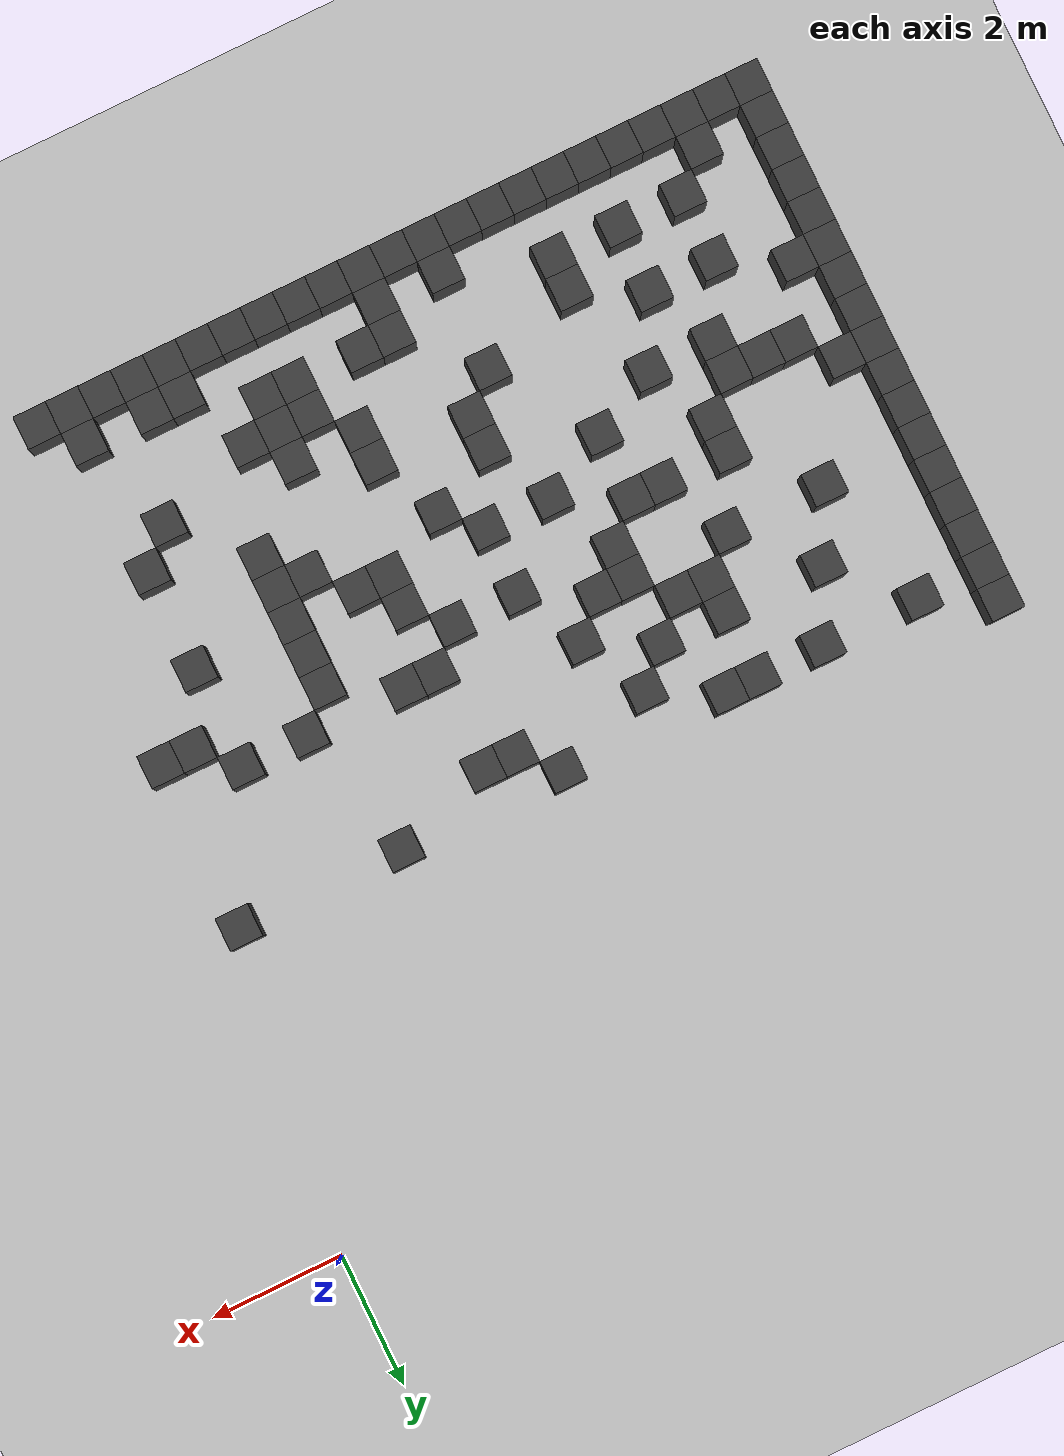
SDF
<sdf version="1.7">
 <world name="map_4752">
  <model name="ground_plane">
   <static>true</static>
   <link name="link">
    <collision name="collision">
     <geometry><plane><normal>0 0 1</normal><size>200 200</size></plane></geometry>
    </collision>
    <visual name="visual">
     <geometry><plane><normal>0 0 1</normal><size>200 200</size></plane></geometry>
     <material><ambient>0.8 0.8 0.8 1</ambient><diffuse>0.8 0.8 0.8 1</diffuse></material>
    </visual>
   </link>
  </model>
  <model name="maze_environment">
   <static>true</static>
   <link name="wall_462">
    <pose>-12.250 -4.250 0.500 0 0 0</pose>
    <collision name="col"><geometry><box><size>0.5 0.5 1.0</size></box></geometry></collision>
    <visual name="vis">
     <geometry><box><size>0.5 0.5 1.0</size></box></geometry>
     <material><ambient>0.15 0.15 0.15 1</ambient><diffuse>0.25 0.25 0.25 1</diffuse></material>
    </visual>
   </link>
   <link name="wall_475">
    <pose>-12.250 -4.750 0.500 0 0 0</pose>
    <collision name="col"><geometry><box><size>0.5 0.5 1.0</size></box></geometry></collision>
    <visual name="vis">
     <geometry><box><size>0.5 0.5 1.0</size></box></geometry>
     <material><ambient>0.15 0.15 0.15 1</ambient><diffuse>0.25 0.25 0.25 1</diffuse></material>
    </visual>
   </link>
   <link name="wall_476">
    <pose>-11.250 -4.750 0.500 0 0 0</pose>
    <collision name="col"><geometry><box><size>0.5 0.5 1.0</size></box></geometry></collision>
    <visual name="vis">
     <geometry><box><size>0.5 0.5 1.0</size></box></geometry>
     <material><ambient>0.15 0.15 0.15 1</ambient><diffuse>0.25 0.25 0.25 1</diffuse></material>
    </visual>
   </link>
   <link name="wall_477">
    <pose>-9.750 -4.750 0.500 0 0 0</pose>
    <collision name="col"><geometry><box><size>0.5 0.5 1.0</size></box></geometry></collision>
    <visual name="vis">
     <geometry><box><size>0.5 0.5 1.0</size></box></geometry>
     <material><ambient>0.15 0.15 0.15 1</ambient><diffuse>0.25 0.25 0.25 1</diffuse></material>
    </visual>
   </link>
   <link name="wall_478">
    <pose>-8.750 -4.750 0.500 0 0 0</pose>
    <collision name="col"><geometry><box><size>0.5 0.5 1.0</size></box></geometry></collision>
    <visual name="vis">
     <geometry><box><size>0.5 0.5 1.0</size></box></geometry>
     <material><ambient>0.15 0.15 0.15 1</ambient><diffuse>0.25 0.25 0.25 1</diffuse></material>
    </visual>
   </link>
   <link name="wall_479">
    <pose>-8.250 -4.750 0.500 0 0 0</pose>
    <collision name="col"><geometry><box><size>0.5 0.5 1.0</size></box></geometry></collision>
    <visual name="vis">
     <geometry><box><size>0.5 0.5 1.0</size></box></geometry>
     <material><ambient>0.15 0.15 0.15 1</ambient><diffuse>0.25 0.25 0.25 1</diffuse></material>
    </visual>
   </link>
   <link name="wall_480">
    <pose>-5.750 -4.750 0.500 0 0 0</pose>
    <collision name="col"><geometry><box><size>0.5 0.5 1.0</size></box></geometry></collision>
    <visual name="vis">
     <geometry><box><size>0.5 0.5 1.0</size></box></geometry>
     <material><ambient>0.15 0.15 0.15 1</ambient><diffuse>0.25 0.25 0.25 1</diffuse></material>
    </visual>
   </link>
   <link name="wall_481">
    <pose>-3.250 -4.750 0.500 0 0 0</pose>
    <collision name="col"><geometry><box><size>0.5 0.5 1.0</size></box></geometry></collision>
    <visual name="vis">
     <geometry><box><size>0.5 0.5 1.0</size></box></geometry>
     <material><ambient>0.15 0.15 0.15 1</ambient><diffuse>0.25 0.25 0.25 1</diffuse></material>
    </visual>
   </link>
   <link name="wall_482">
    <pose>-0.750 -4.750 0.500 0 0 0</pose>
    <collision name="col"><geometry><box><size>0.5 0.5 1.0</size></box></geometry></collision>
    <visual name="vis">
     <geometry><box><size>0.5 0.5 1.0</size></box></geometry>
     <material><ambient>0.15 0.15 0.15 1</ambient><diffuse>0.25 0.25 0.25 1</diffuse></material>
    </visual>
   </link>
   <link name="wall_488">
    <pose>-12.250 -5.250 0.500 0 0 0</pose>
    <collision name="col"><geometry><box><size>0.5 0.5 1.0</size></box></geometry></collision>
    <visual name="vis">
     <geometry><box><size>0.5 0.5 1.0</size></box></geometry>
     <material><ambient>0.15 0.15 0.15 1</ambient><diffuse>0.25 0.25 0.25 1</diffuse></material>
    </visual>
   </link>
   <link name="wall_489">
    <pose>-7.250 -5.250 0.500 0 0 0</pose>
    <collision name="col"><geometry><box><size>0.5 0.5 1.0</size></box></geometry></collision>
    <visual name="vis">
     <geometry><box><size>0.5 0.5 1.0</size></box></geometry>
     <material><ambient>0.15 0.15 0.15 1</ambient><diffuse>0.25 0.25 0.25 1</diffuse></material>
    </visual>
   </link>
   <link name="wall_490">
    <pose>-5.250 -5.250 0.500 0 0 0</pose>
    <collision name="col"><geometry><box><size>0.5 0.5 1.0</size></box></geometry></collision>
    <visual name="vis">
     <geometry><box><size>0.5 0.5 1.0</size></box></geometry>
     <material><ambient>0.15 0.15 0.15 1</ambient><diffuse>0.25 0.25 0.25 1</diffuse></material>
    </visual>
   </link>
   <link name="wall_491">
    <pose>-4.750 -5.250 0.500 0 0 0</pose>
    <collision name="col"><geometry><box><size>0.5 0.5 1.0</size></box></geometry></collision>
    <visual name="vis">
     <geometry><box><size>0.5 0.5 1.0</size></box></geometry>
     <material><ambient>0.15 0.15 0.15 1</ambient><diffuse>0.25 0.25 0.25 1</diffuse></material>
    </visual>
   </link>
   <link name="wall_499">
    <pose>-12.250 -5.750 0.500 0 0 0</pose>
    <collision name="col"><geometry><box><size>0.5 0.5 1.0</size></box></geometry></collision>
    <visual name="vis">
     <geometry><box><size>0.5 0.5 1.0</size></box></geometry>
     <material><ambient>0.15 0.15 0.15 1</ambient><diffuse>0.25 0.25 0.25 1</diffuse></material>
    </visual>
   </link>
   <link name="wall_500">
    <pose>-10.250 -5.750 0.500 0 0 0</pose>
    <collision name="col"><geometry><box><size>0.5 0.5 1.0</size></box></geometry></collision>
    <visual name="vis">
     <geometry><box><size>0.5 0.5 1.0</size></box></geometry>
     <material><ambient>0.15 0.15 0.15 1</ambient><diffuse>0.25 0.25 0.25 1</diffuse></material>
    </visual>
   </link>
   <link name="wall_501">
    <pose>-8.750 -5.750 0.500 0 0 0</pose>
    <collision name="col"><geometry><box><size>0.5 0.5 1.0</size></box></geometry></collision>
    <visual name="vis">
     <geometry><box><size>0.5 0.5 1.0</size></box></geometry>
     <material><ambient>0.15 0.15 0.15 1</ambient><diffuse>0.25 0.25 0.25 1</diffuse></material>
    </visual>
   </link>
   <link name="wall_502">
    <pose>-7.750 -5.750 0.500 0 0 0</pose>
    <collision name="col"><geometry><box><size>0.5 0.5 1.0</size></box></geometry></collision>
    <visual name="vis">
     <geometry><box><size>0.5 0.5 1.0</size></box></geometry>
     <material><ambient>0.15 0.15 0.15 1</ambient><diffuse>0.25 0.25 0.25 1</diffuse></material>
    </visual>
   </link>
   <link name="wall_511">
    <pose>-12.250 -6.250 0.500 0 0 0</pose>
    <collision name="col"><geometry><box><size>0.5 0.5 1.0</size></box></geometry></collision>
    <visual name="vis">
     <geometry><box><size>0.5 0.5 1.0</size></box></geometry>
     <material><ambient>0.15 0.15 0.15 1</ambient><diffuse>0.25 0.25 0.25 1</diffuse></material>
    </visual>
   </link>
   <link name="wall_512">
    <pose>-8.750 -6.250 0.500 0 0 0</pose>
    <collision name="col"><geometry><box><size>0.5 0.5 1.0</size></box></geometry></collision>
    <visual name="vis">
     <geometry><box><size>0.5 0.5 1.0</size></box></geometry>
     <material><ambient>0.15 0.15 0.15 1</ambient><diffuse>0.25 0.25 0.25 1</diffuse></material>
    </visual>
   </link>
   <link name="wall_513">
    <pose>-8.250 -6.250 0.500 0 0 0</pose>
    <collision name="col"><geometry><box><size>0.5 0.5 1.0</size></box></geometry></collision>
    <visual name="vis">
     <geometry><box><size>0.5 0.5 1.0</size></box></geometry>
     <material><ambient>0.15 0.15 0.15 1</ambient><diffuse>0.25 0.25 0.25 1</diffuse></material>
    </visual>
   </link>
   <link name="wall_514">
    <pose>-6.750 -6.250 0.500 0 0 0</pose>
    <collision name="col"><geometry><box><size>0.5 0.5 1.0</size></box></geometry></collision>
    <visual name="vis">
     <geometry><box><size>0.5 0.5 1.0</size></box></geometry>
     <material><ambient>0.15 0.15 0.15 1</ambient><diffuse>0.25 0.25 0.25 1</diffuse></material>
    </visual>
   </link>
   <link name="wall_520">
    <pose>-12.250 -6.750 0.500 0 0 0</pose>
    <collision name="col"><geometry><box><size>0.5 0.5 1.0</size></box></geometry></collision>
    <visual name="vis">
     <geometry><box><size>0.5 0.5 1.0</size></box></geometry>
     <material><ambient>0.15 0.15 0.15 1</ambient><diffuse>0.25 0.25 0.25 1</diffuse></material>
    </visual>
   </link>
   <link name="wall_521">
    <pose>-10.750 -6.750 0.500 0 0 0</pose>
    <collision name="col"><geometry><box><size>0.5 0.5 1.0</size></box></geometry></collision>
    <visual name="vis">
     <geometry><box><size>0.5 0.5 1.0</size></box></geometry>
     <material><ambient>0.15 0.15 0.15 1</ambient><diffuse>0.25 0.25 0.25 1</diffuse></material>
    </visual>
   </link>
   <link name="wall_522">
    <pose>-9.250 -6.750 0.500 0 0 0</pose>
    <collision name="col"><geometry><box><size>0.5 0.5 1.0</size></box></geometry></collision>
    <visual name="vis">
     <geometry><box><size>0.5 0.5 1.0</size></box></geometry>
     <material><ambient>0.15 0.15 0.15 1</ambient><diffuse>0.25 0.25 0.25 1</diffuse></material>
    </visual>
   </link>
   <link name="wall_523">
    <pose>-7.750 -6.750 0.500 0 0 0</pose>
    <collision name="col"><geometry><box><size>0.5 0.5 1.0</size></box></geometry></collision>
    <visual name="vis">
     <geometry><box><size>0.5 0.5 1.0</size></box></geometry>
     <material><ambient>0.15 0.15 0.15 1</ambient><diffuse>0.25 0.25 0.25 1</diffuse></material>
    </visual>
   </link>
   <link name="wall_524">
    <pose>-7.250 -6.750 0.500 0 0 0</pose>
    <collision name="col"><geometry><box><size>0.5 0.5 1.0</size></box></geometry></collision>
    <visual name="vis">
     <geometry><box><size>0.5 0.5 1.0</size></box></geometry>
     <material><ambient>0.15 0.15 0.15 1</ambient><diffuse>0.25 0.25 0.25 1</diffuse></material>
    </visual>
   </link>
   <link name="wall_525">
    <pose>-4.750 -6.750 0.500 0 0 0</pose>
    <collision name="col"><geometry><box><size>0.5 0.5 1.0</size></box></geometry></collision>
    <visual name="vis">
     <geometry><box><size>0.5 0.5 1.0</size></box></geometry>
     <material><ambient>0.15 0.15 0.15 1</ambient><diffuse>0.25 0.25 0.25 1</diffuse></material>
    </visual>
   </link>
   <link name="wall_526">
    <pose>-4.250 -6.750 0.500 0 0 0</pose>
    <collision name="col"><geometry><box><size>0.5 0.5 1.0</size></box></geometry></collision>
    <visual name="vis">
     <geometry><box><size>0.5 0.5 1.0</size></box></geometry>
     <material><ambient>0.15 0.15 0.15 1</ambient><diffuse>0.25 0.25 0.25 1</diffuse></material>
    </visual>
   </link>
   <link name="wall_527">
    <pose>-2.750 -6.750 0.500 0 0 0</pose>
    <collision name="col"><geometry><box><size>0.5 0.5 1.0</size></box></geometry></collision>
    <visual name="vis">
     <geometry><box><size>0.5 0.5 1.0</size></box></geometry>
     <material><ambient>0.15 0.15 0.15 1</ambient><diffuse>0.25 0.25 0.25 1</diffuse></material>
    </visual>
   </link>
   <link name="wall_528">
    <pose>-1.750 -6.750 0.500 0 0 0</pose>
    <collision name="col"><geometry><box><size>0.5 0.5 1.0</size></box></geometry></collision>
    <visual name="vis">
     <geometry><box><size>0.5 0.5 1.0</size></box></geometry>
     <material><ambient>0.15 0.15 0.15 1</ambient><diffuse>0.25 0.25 0.25 1</diffuse></material>
    </visual>
   </link>
   <link name="wall_535">
    <pose>-12.250 -7.250 0.500 0 0 0</pose>
    <collision name="col"><geometry><box><size>0.5 0.5 1.0</size></box></geometry></collision>
    <visual name="vis">
     <geometry><box><size>0.5 0.5 1.0</size></box></geometry>
     <material><ambient>0.15 0.15 0.15 1</ambient><diffuse>0.25 0.25 0.25 1</diffuse></material>
    </visual>
   </link>
   <link name="wall_536">
    <pose>-7.750 -7.250 0.500 0 0 0</pose>
    <collision name="col"><geometry><box><size>0.5 0.5 1.0</size></box></geometry></collision>
    <visual name="vis">
     <geometry><box><size>0.5 0.5 1.0</size></box></geometry>
     <material><ambient>0.15 0.15 0.15 1</ambient><diffuse>0.25 0.25 0.25 1</diffuse></material>
    </visual>
   </link>
   <link name="wall_537">
    <pose>-6.250 -7.250 0.500 0 0 0</pose>
    <collision name="col"><geometry><box><size>0.5 0.5 1.0</size></box></geometry></collision>
    <visual name="vis">
     <geometry><box><size>0.5 0.5 1.0</size></box></geometry>
     <material><ambient>0.15 0.15 0.15 1</ambient><diffuse>0.25 0.25 0.25 1</diffuse></material>
    </visual>
   </link>
   <link name="wall_538">
    <pose>-5.250 -7.250 0.500 0 0 0</pose>
    <collision name="col"><geometry><box><size>0.5 0.5 1.0</size></box></geometry></collision>
    <visual name="vis">
     <geometry><box><size>0.5 0.5 1.0</size></box></geometry>
     <material><ambient>0.15 0.15 0.15 1</ambient><diffuse>0.25 0.25 0.25 1</diffuse></material>
    </visual>
   </link>
   <link name="wall_539">
    <pose>-3.250 -7.250 0.500 0 0 0</pose>
    <collision name="col"><geometry><box><size>0.5 0.5 1.0</size></box></geometry></collision>
    <visual name="vis">
     <geometry><box><size>0.5 0.5 1.0</size></box></geometry>
     <material><ambient>0.15 0.15 0.15 1</ambient><diffuse>0.25 0.25 0.25 1</diffuse></material>
    </visual>
   </link>
   <link name="wall_540">
    <pose>-1.250 -7.250 0.500 0 0 0</pose>
    <collision name="col"><geometry><box><size>0.5 0.5 1.0</size></box></geometry></collision>
    <visual name="vis">
     <geometry><box><size>0.5 0.5 1.0</size></box></geometry>
     <material><ambient>0.15 0.15 0.15 1</ambient><diffuse>0.25 0.25 0.25 1</diffuse></material>
    </visual>
   </link>
   <link name="wall_541">
    <pose>-0.750 -7.250 0.500 0 0 0</pose>
    <collision name="col"><geometry><box><size>0.5 0.5 1.0</size></box></geometry></collision>
    <visual name="vis">
     <geometry><box><size>0.5 0.5 1.0</size></box></geometry>
     <material><ambient>0.15 0.15 0.15 1</ambient><diffuse>0.25 0.25 0.25 1</diffuse></material>
    </visual>
   </link>
   <link name="wall_549">
    <pose>-12.250 -7.750 0.500 0 0 0</pose>
    <collision name="col"><geometry><box><size>0.5 0.5 1.0</size></box></geometry></collision>
    <visual name="vis">
     <geometry><box><size>0.5 0.5 1.0</size></box></geometry>
     <material><ambient>0.15 0.15 0.15 1</ambient><diffuse>0.25 0.25 0.25 1</diffuse></material>
    </visual>
   </link>
   <link name="wall_550">
    <pose>-9.750 -7.750 0.500 0 0 0</pose>
    <collision name="col"><geometry><box><size>0.5 0.5 1.0</size></box></geometry></collision>
    <visual name="vis">
     <geometry><box><size>0.5 0.5 1.0</size></box></geometry>
     <material><ambient>0.15 0.15 0.15 1</ambient><diffuse>0.25 0.25 0.25 1</diffuse></material>
    </visual>
   </link>
   <link name="wall_551">
    <pose>-8.750 -7.750 0.500 0 0 0</pose>
    <collision name="col"><geometry><box><size>0.5 0.5 1.0</size></box></geometry></collision>
    <visual name="vis">
     <geometry><box><size>0.5 0.5 1.0</size></box></geometry>
     <material><ambient>0.15 0.15 0.15 1</ambient><diffuse>0.25 0.25 0.25 1</diffuse></material>
    </visual>
   </link>
   <link name="wall_552">
    <pose>-8.250 -7.750 0.500 0 0 0</pose>
    <collision name="col"><geometry><box><size>0.5 0.5 1.0</size></box></geometry></collision>
    <visual name="vis">
     <geometry><box><size>0.5 0.5 1.0</size></box></geometry>
     <material><ambient>0.15 0.15 0.15 1</ambient><diffuse>0.25 0.25 0.25 1</diffuse></material>
    </visual>
   </link>
   <link name="wall_553">
    <pose>-4.750 -7.750 0.500 0 0 0</pose>
    <collision name="col"><geometry><box><size>0.5 0.5 1.0</size></box></geometry></collision>
    <visual name="vis">
     <geometry><box><size>0.5 0.5 1.0</size></box></geometry>
     <material><ambient>0.15 0.15 0.15 1</ambient><diffuse>0.25 0.25 0.25 1</diffuse></material>
    </visual>
   </link>
   <link name="wall_554">
    <pose>-3.250 -7.750 0.500 0 0 0</pose>
    <collision name="col"><geometry><box><size>0.5 0.5 1.0</size></box></geometry></collision>
    <visual name="vis">
     <geometry><box><size>0.5 0.5 1.0</size></box></geometry>
     <material><ambient>0.15 0.15 0.15 1</ambient><diffuse>0.25 0.25 0.25 1</diffuse></material>
    </visual>
   </link>
   <link name="wall_559">
    <pose>-12.250 -8.250 0.500 0 0 0</pose>
    <collision name="col"><geometry><box><size>0.5 0.5 1.0</size></box></geometry></collision>
    <visual name="vis">
     <geometry><box><size>0.5 0.5 1.0</size></box></geometry>
     <material><ambient>0.15 0.15 0.15 1</ambient><diffuse>0.25 0.25 0.25 1</diffuse></material>
    </visual>
   </link>
   <link name="wall_560">
    <pose>-11.750 -8.250 0.500 0 0 0</pose>
    <collision name="col"><geometry><box><size>0.5 0.5 1.0</size></box></geometry></collision>
    <visual name="vis">
     <geometry><box><size>0.5 0.5 1.0</size></box></geometry>
     <material><ambient>0.15 0.15 0.15 1</ambient><diffuse>0.25 0.25 0.25 1</diffuse></material>
    </visual>
   </link>
   <link name="wall_561">
    <pose>-9.750 -8.250 0.500 0 0 0</pose>
    <collision name="col"><geometry><box><size>0.5 0.5 1.0</size></box></geometry></collision>
    <visual name="vis">
     <geometry><box><size>0.5 0.5 1.0</size></box></geometry>
     <material><ambient>0.15 0.15 0.15 1</ambient><diffuse>0.25 0.25 0.25 1</diffuse></material>
    </visual>
   </link>
   <link name="wall_562">
    <pose>-7.250 -8.250 0.500 0 0 0</pose>
    <collision name="col"><geometry><box><size>0.5 0.5 1.0</size></box></geometry></collision>
    <visual name="vis">
     <geometry><box><size>0.5 0.5 1.0</size></box></geometry>
     <material><ambient>0.15 0.15 0.15 1</ambient><diffuse>0.25 0.25 0.25 1</diffuse></material>
    </visual>
   </link>
   <link name="wall_563">
    <pose>-6.250 -8.250 0.500 0 0 0</pose>
    <collision name="col"><geometry><box><size>0.5 0.5 1.0</size></box></geometry></collision>
    <visual name="vis">
     <geometry><box><size>0.5 0.5 1.0</size></box></geometry>
     <material><ambient>0.15 0.15 0.15 1</ambient><diffuse>0.25 0.25 0.25 1</diffuse></material>
    </visual>
   </link>
   <link name="wall_564">
    <pose>-4.750 -8.250 0.500 0 0 0</pose>
    <collision name="col"><geometry><box><size>0.5 0.5 1.0</size></box></geometry></collision>
    <visual name="vis">
     <geometry><box><size>0.5 0.5 1.0</size></box></geometry>
     <material><ambient>0.15 0.15 0.15 1</ambient><diffuse>0.25 0.25 0.25 1</diffuse></material>
    </visual>
   </link>
   <link name="wall_565">
    <pose>-4.250 -8.250 0.500 0 0 0</pose>
    <collision name="col"><geometry><box><size>0.5 0.5 1.0</size></box></geometry></collision>
    <visual name="vis">
     <geometry><box><size>0.5 0.5 1.0</size></box></geometry>
     <material><ambient>0.15 0.15 0.15 1</ambient><diffuse>0.25 0.25 0.25 1</diffuse></material>
    </visual>
   </link>
   <link name="wall_566">
    <pose>-3.250 -8.250 0.500 0 0 0</pose>
    <collision name="col"><geometry><box><size>0.5 0.5 1.0</size></box></geometry></collision>
    <visual name="vis">
     <geometry><box><size>0.5 0.5 1.0</size></box></geometry>
     <material><ambient>0.15 0.15 0.15 1</ambient><diffuse>0.25 0.25 0.25 1</diffuse></material>
    </visual>
   </link>
   <link name="wall_567">
    <pose>-1.750 -8.250 0.500 0 0 0</pose>
    <collision name="col"><geometry><box><size>0.5 0.5 1.0</size></box></geometry></collision>
    <visual name="vis">
     <geometry><box><size>0.5 0.5 1.0</size></box></geometry>
     <material><ambient>0.15 0.15 0.15 1</ambient><diffuse>0.25 0.25 0.25 1</diffuse></material>
    </visual>
   </link>
   <link name="wall_574">
    <pose>-12.250 -8.750 0.500 0 0 0</pose>
    <collision name="col"><geometry><box><size>0.5 0.5 1.0</size></box></geometry></collision>
    <visual name="vis">
     <geometry><box><size>0.5 0.5 1.0</size></box></geometry>
     <material><ambient>0.15 0.15 0.15 1</ambient><diffuse>0.25 0.25 0.25 1</diffuse></material>
    </visual>
   </link>
   <link name="wall_575">
    <pose>-11.250 -8.750 0.500 0 0 0</pose>
    <collision name="col"><geometry><box><size>0.5 0.5 1.0</size></box></geometry></collision>
    <visual name="vis">
     <geometry><box><size>0.5 0.5 1.0</size></box></geometry>
     <material><ambient>0.15 0.15 0.15 1</ambient><diffuse>0.25 0.25 0.25 1</diffuse></material>
    </visual>
   </link>
   <link name="wall_576">
    <pose>-10.750 -8.750 0.500 0 0 0</pose>
    <collision name="col"><geometry><box><size>0.5 0.5 1.0</size></box></geometry></collision>
    <visual name="vis">
     <geometry><box><size>0.5 0.5 1.0</size></box></geometry>
     <material><ambient>0.15 0.15 0.15 1</ambient><diffuse>0.25 0.25 0.25 1</diffuse></material>
    </visual>
   </link>
   <link name="wall_577">
    <pose>-10.250 -8.750 0.500 0 0 0</pose>
    <collision name="col"><geometry><box><size>0.5 0.5 1.0</size></box></geometry></collision>
    <visual name="vis">
     <geometry><box><size>0.5 0.5 1.0</size></box></geometry>
     <material><ambient>0.15 0.15 0.15 1</ambient><diffuse>0.25 0.25 0.25 1</diffuse></material>
    </visual>
   </link>
   <link name="wall_578">
    <pose>-8.250 -8.750 0.500 0 0 0</pose>
    <collision name="col"><geometry><box><size>0.5 0.5 1.0</size></box></geometry></collision>
    <visual name="vis">
     <geometry><box><size>0.5 0.5 1.0</size></box></geometry>
     <material><ambient>0.15 0.15 0.15 1</ambient><diffuse>0.25 0.25 0.25 1</diffuse></material>
    </visual>
   </link>
   <link name="wall_579">
    <pose>-5.750 -8.750 0.500 0 0 0</pose>
    <collision name="col"><geometry><box><size>0.5 0.5 1.0</size></box></geometry></collision>
    <visual name="vis">
     <geometry><box><size>0.5 0.5 1.0</size></box></geometry>
     <material><ambient>0.15 0.15 0.15 1</ambient><diffuse>0.25 0.25 0.25 1</diffuse></material>
    </visual>
   </link>
   <link name="wall_580">
    <pose>-3.750 -8.750 0.500 0 0 0</pose>
    <collision name="col"><geometry><box><size>0.5 0.5 1.0</size></box></geometry></collision>
    <visual name="vis">
     <geometry><box><size>0.5 0.5 1.0</size></box></geometry>
     <material><ambient>0.15 0.15 0.15 1</ambient><diffuse>0.25 0.25 0.25 1</diffuse></material>
    </visual>
   </link>
   <link name="wall_581">
    <pose>-3.250 -8.750 0.500 0 0 0</pose>
    <collision name="col"><geometry><box><size>0.5 0.5 1.0</size></box></geometry></collision>
    <visual name="vis">
     <geometry><box><size>0.5 0.5 1.0</size></box></geometry>
     <material><ambient>0.15 0.15 0.15 1</ambient><diffuse>0.25 0.25 0.25 1</diffuse></material>
    </visual>
   </link>
   <link name="wall_593">
    <pose>-12.250 -9.250 0.500 0 0 0</pose>
    <collision name="col"><geometry><box><size>0.5 0.5 1.0</size></box></geometry></collision>
    <visual name="vis">
     <geometry><box><size>0.5 0.5 1.0</size></box></geometry>
     <material><ambient>0.15 0.15 0.15 1</ambient><diffuse>0.25 0.25 0.25 1</diffuse></material>
    </visual>
   </link>
   <link name="wall_594">
    <pose>-10.250 -9.250 0.500 0 0 0</pose>
    <collision name="col"><geometry><box><size>0.5 0.5 1.0</size></box></geometry></collision>
    <visual name="vis">
     <geometry><box><size>0.5 0.5 1.0</size></box></geometry>
     <material><ambient>0.15 0.15 0.15 1</ambient><diffuse>0.25 0.25 0.25 1</diffuse></material>
    </visual>
   </link>
   <link name="wall_595">
    <pose>-9.250 -9.250 0.500 0 0 0</pose>
    <collision name="col"><geometry><box><size>0.5 0.5 1.0</size></box></geometry></collision>
    <visual name="vis">
     <geometry><box><size>0.5 0.5 1.0</size></box></geometry>
     <material><ambient>0.15 0.15 0.15 1</ambient><diffuse>0.25 0.25 0.25 1</diffuse></material>
    </visual>
   </link>
   <link name="wall_596">
    <pose>-6.750 -9.250 0.500 0 0 0</pose>
    <collision name="col"><geometry><box><size>0.5 0.5 1.0</size></box></geometry></collision>
    <visual name="vis">
     <geometry><box><size>0.5 0.5 1.0</size></box></geometry>
     <material><ambient>0.15 0.15 0.15 1</ambient><diffuse>0.25 0.25 0.25 1</diffuse></material>
    </visual>
   </link>
   <link name="wall_597">
    <pose>-3.250 -9.250 0.500 0 0 0</pose>
    <collision name="col"><geometry><box><size>0.5 0.5 1.0</size></box></geometry></collision>
    <visual name="vis">
     <geometry><box><size>0.5 0.5 1.0</size></box></geometry>
     <material><ambient>0.15 0.15 0.15 1</ambient><diffuse>0.25 0.25 0.25 1</diffuse></material>
    </visual>
   </link>
   <link name="wall_608">
    <pose>-12.250 -9.750 0.500 0 0 0</pose>
    <collision name="col"><geometry><box><size>0.5 0.5 1.0</size></box></geometry></collision>
    <visual name="vis">
     <geometry><box><size>0.5 0.5 1.0</size></box></geometry>
     <material><ambient>0.15 0.15 0.15 1</ambient><diffuse>0.25 0.25 0.25 1</diffuse></material>
    </visual>
   </link>
   <link name="wall_609">
    <pose>-11.750 -9.750 0.500 0 0 0</pose>
    <collision name="col"><geometry><box><size>0.5 0.5 1.0</size></box></geometry></collision>
    <visual name="vis">
     <geometry><box><size>0.5 0.5 1.0</size></box></geometry>
     <material><ambient>0.15 0.15 0.15 1</ambient><diffuse>0.25 0.25 0.25 1</diffuse></material>
    </visual>
   </link>
   <link name="wall_610">
    <pose>-6.750 -9.750 0.500 0 0 0</pose>
    <collision name="col"><geometry><box><size>0.5 0.5 1.0</size></box></geometry></collision>
    <visual name="vis">
     <geometry><box><size>0.5 0.5 1.0</size></box></geometry>
     <material><ambient>0.15 0.15 0.15 1</ambient><diffuse>0.25 0.25 0.25 1</diffuse></material>
    </visual>
   </link>
   <link name="wall_611">
    <pose>-5.250 -9.750 0.500 0 0 0</pose>
    <collision name="col"><geometry><box><size>0.5 0.5 1.0</size></box></geometry></collision>
    <visual name="vis">
     <geometry><box><size>0.5 0.5 1.0</size></box></geometry>
     <material><ambient>0.15 0.15 0.15 1</ambient><diffuse>0.25 0.25 0.25 1</diffuse></material>
    </visual>
   </link>
   <link name="wall_612">
    <pose>-1.750 -9.750 0.500 0 0 0</pose>
    <collision name="col"><geometry><box><size>0.5 0.5 1.0</size></box></geometry></collision>
    <visual name="vis">
     <geometry><box><size>0.5 0.5 1.0</size></box></geometry>
     <material><ambient>0.15 0.15 0.15 1</ambient><diffuse>0.25 0.25 0.25 1</diffuse></material>
    </visual>
   </link>
   <link name="wall_618">
    <pose>-12.250 -10.250 0.500 0 0 0</pose>
    <collision name="col"><geometry><box><size>0.5 0.5 1.0</size></box></geometry></collision>
    <visual name="vis">
     <geometry><box><size>0.5 0.5 1.0</size></box></geometry>
     <material><ambient>0.15 0.15 0.15 1</ambient><diffuse>0.25 0.25 0.25 1</diffuse></material>
    </visual>
   </link>
   <link name="wall_619">
    <pose>-10.750 -10.250 0.500 0 0 0</pose>
    <collision name="col"><geometry><box><size>0.5 0.5 1.0</size></box></geometry></collision>
    <visual name="vis">
     <geometry><box><size>0.5 0.5 1.0</size></box></geometry>
     <material><ambient>0.15 0.15 0.15 1</ambient><diffuse>0.25 0.25 0.25 1</diffuse></material>
    </visual>
   </link>
   <link name="wall_620">
    <pose>-9.750 -10.250 0.500 0 0 0</pose>
    <collision name="col"><geometry><box><size>0.5 0.5 1.0</size></box></geometry></collision>
    <visual name="vis">
     <geometry><box><size>0.5 0.5 1.0</size></box></geometry>
     <material><ambient>0.15 0.15 0.15 1</ambient><diffuse>0.25 0.25 0.25 1</diffuse></material>
    </visual>
   </link>
   <link name="wall_621">
    <pose>-7.250 -10.250 0.500 0 0 0</pose>
    <collision name="col"><geometry><box><size>0.5 0.5 1.0</size></box></geometry></collision>
    <visual name="vis">
     <geometry><box><size>0.5 0.5 1.0</size></box></geometry>
     <material><ambient>0.15 0.15 0.15 1</ambient><diffuse>0.25 0.25 0.25 1</diffuse></material>
    </visual>
   </link>
   <link name="wall_622">
    <pose>-5.250 -10.250 0.500 0 0 0</pose>
    <collision name="col"><geometry><box><size>0.5 0.5 1.0</size></box></geometry></collision>
    <visual name="vis">
     <geometry><box><size>0.5 0.5 1.0</size></box></geometry>
     <material><ambient>0.15 0.15 0.15 1</ambient><diffuse>0.25 0.25 0.25 1</diffuse></material>
    </visual>
   </link>
   <link name="wall_623">
    <pose>-4.250 -10.250 0.500 0 0 0</pose>
    <collision name="col"><geometry><box><size>0.5 0.5 1.0</size></box></geometry></collision>
    <visual name="vis">
     <geometry><box><size>0.5 0.5 1.0</size></box></geometry>
     <material><ambient>0.15 0.15 0.15 1</ambient><diffuse>0.25 0.25 0.25 1</diffuse></material>
    </visual>
   </link>
   <link name="wall_624">
    <pose>-2.250 -10.250 0.500 0 0 0</pose>
    <collision name="col"><geometry><box><size>0.5 0.5 1.0</size></box></geometry></collision>
    <visual name="vis">
     <geometry><box><size>0.5 0.5 1.0</size></box></geometry>
     <material><ambient>0.15 0.15 0.15 1</ambient><diffuse>0.25 0.25 0.25 1</diffuse></material>
    </visual>
   </link>
   <link name="wall_628">
    <pose>-12.250 -10.750 0.500 0 0 0</pose>
    <collision name="col"><geometry><box><size>0.5 0.5 1.0</size></box></geometry></collision>
    <visual name="vis">
     <geometry><box><size>0.5 0.5 1.0</size></box></geometry>
     <material><ambient>0.15 0.15 0.15 1</ambient><diffuse>0.25 0.25 0.25 1</diffuse></material>
    </visual>
   </link>
   <link name="wall_629">
    <pose>-8.750 -10.750 0.500 0 0 0</pose>
    <collision name="col"><geometry><box><size>0.5 0.5 1.0</size></box></geometry></collision>
    <visual name="vis">
     <geometry><box><size>0.5 0.5 1.0</size></box></geometry>
     <material><ambient>0.15 0.15 0.15 1</ambient><diffuse>0.25 0.25 0.25 1</diffuse></material>
    </visual>
   </link>
   <link name="wall_630">
    <pose>-4.750 -10.750 0.500 0 0 0</pose>
    <collision name="col"><geometry><box><size>0.5 0.5 1.0</size></box></geometry></collision>
    <visual name="vis">
     <geometry><box><size>0.5 0.5 1.0</size></box></geometry>
     <material><ambient>0.15 0.15 0.15 1</ambient><diffuse>0.25 0.25 0.25 1</diffuse></material>
    </visual>
   </link>
   <link name="wall_631">
    <pose>-4.250 -10.750 0.500 0 0 0</pose>
    <collision name="col"><geometry><box><size>0.5 0.5 1.0</size></box></geometry></collision>
    <visual name="vis">
     <geometry><box><size>0.5 0.5 1.0</size></box></geometry>
     <material><ambient>0.15 0.15 0.15 1</ambient><diffuse>0.25 0.25 0.25 1</diffuse></material>
    </visual>
   </link>
   <link name="wall_632">
    <pose>-3.750 -10.750 0.500 0 0 0</pose>
    <collision name="col"><geometry><box><size>0.5 0.5 1.0</size></box></geometry></collision>
    <visual name="vis">
     <geometry><box><size>0.5 0.5 1.0</size></box></geometry>
     <material><ambient>0.15 0.15 0.15 1</ambient><diffuse>0.25 0.25 0.25 1</diffuse></material>
    </visual>
   </link>
   <link name="wall_643">
    <pose>-12.250 -11.250 0.500 0 0 0</pose>
    <collision name="col"><geometry><box><size>0.5 0.5 1.0</size></box></geometry></collision>
    <visual name="vis">
     <geometry><box><size>0.5 0.5 1.0</size></box></geometry>
     <material><ambient>0.15 0.15 0.15 1</ambient><diffuse>0.25 0.25 0.25 1</diffuse></material>
    </visual>
   </link>
   <link name="wall_644">
    <pose>-10.750 -11.250 0.500 0 0 0</pose>
    <collision name="col"><geometry><box><size>0.5 0.5 1.0</size></box></geometry></collision>
    <visual name="vis">
     <geometry><box><size>0.5 0.5 1.0</size></box></geometry>
     <material><ambient>0.15 0.15 0.15 1</ambient><diffuse>0.25 0.25 0.25 1</diffuse></material>
    </visual>
   </link>
   <link name="wall_645">
    <pose>-9.750 -11.250 0.500 0 0 0</pose>
    <collision name="col"><geometry><box><size>0.5 0.5 1.0</size></box></geometry></collision>
    <visual name="vis">
     <geometry><box><size>0.5 0.5 1.0</size></box></geometry>
     <material><ambient>0.15 0.15 0.15 1</ambient><diffuse>0.25 0.25 0.25 1</diffuse></material>
    </visual>
   </link>
   <link name="wall_646">
    <pose>-8.750 -11.250 0.500 0 0 0</pose>
    <collision name="col"><geometry><box><size>0.5 0.5 1.0</size></box></geometry></collision>
    <visual name="vis">
     <geometry><box><size>0.5 0.5 1.0</size></box></geometry>
     <material><ambient>0.15 0.15 0.15 1</ambient><diffuse>0.25 0.25 0.25 1</diffuse></material>
    </visual>
   </link>
   <link name="wall_647">
    <pose>-6.250 -11.250 0.500 0 0 0</pose>
    <collision name="col"><geometry><box><size>0.5 0.5 1.0</size></box></geometry></collision>
    <visual name="vis">
     <geometry><box><size>0.5 0.5 1.0</size></box></geometry>
     <material><ambient>0.15 0.15 0.15 1</ambient><diffuse>0.25 0.25 0.25 1</diffuse></material>
    </visual>
   </link>
   <link name="wall_648">
    <pose>-5.750 -11.250 0.500 0 0 0</pose>
    <collision name="col"><geometry><box><size>0.5 0.5 1.0</size></box></geometry></collision>
    <visual name="vis">
     <geometry><box><size>0.5 0.5 1.0</size></box></geometry>
     <material><ambient>0.15 0.15 0.15 1</ambient><diffuse>0.25 0.25 0.25 1</diffuse></material>
    </visual>
   </link>
   <link name="wall_649">
    <pose>-4.750 -11.250 0.500 0 0 0</pose>
    <collision name="col"><geometry><box><size>0.5 0.5 1.0</size></box></geometry></collision>
    <visual name="vis">
     <geometry><box><size>0.5 0.5 1.0</size></box></geometry>
     <material><ambient>0.15 0.15 0.15 1</ambient><diffuse>0.25 0.25 0.25 1</diffuse></material>
    </visual>
   </link>
   <link name="wall_650">
    <pose>-4.250 -11.250 0.500 0 0 0</pose>
    <collision name="col"><geometry><box><size>0.5 0.5 1.0</size></box></geometry></collision>
    <visual name="vis">
     <geometry><box><size>0.5 0.5 1.0</size></box></geometry>
     <material><ambient>0.15 0.15 0.15 1</ambient><diffuse>0.25 0.25 0.25 1</diffuse></material>
    </visual>
   </link>
   <link name="wall_659">
    <pose>-12.250 -11.750 0.500 0 0 0</pose>
    <collision name="col"><geometry><box><size>0.5 0.5 1.0</size></box></geometry></collision>
    <visual name="vis">
     <geometry><box><size>0.5 0.5 1.0</size></box></geometry>
     <material><ambient>0.15 0.15 0.15 1</ambient><diffuse>0.25 0.25 0.25 1</diffuse></material>
    </visual>
   </link>
   <link name="wall_660">
    <pose>-11.250 -11.750 0.500 0 0 0</pose>
    <collision name="col"><geometry><box><size>0.5 0.5 1.0</size></box></geometry></collision>
    <visual name="vis">
     <geometry><box><size>0.5 0.5 1.0</size></box></geometry>
     <material><ambient>0.15 0.15 0.15 1</ambient><diffuse>0.25 0.25 0.25 1</diffuse></material>
    </visual>
   </link>
   <link name="wall_661">
    <pose>-7.250 -11.750 0.500 0 0 0</pose>
    <collision name="col"><geometry><box><size>0.5 0.5 1.0</size></box></geometry></collision>
    <visual name="vis">
     <geometry><box><size>0.5 0.5 1.0</size></box></geometry>
     <material><ambient>0.15 0.15 0.15 1</ambient><diffuse>0.25 0.25 0.25 1</diffuse></material>
    </visual>
   </link>
   <link name="wall_662">
    <pose>-6.250 -11.750 0.500 0 0 0</pose>
    <collision name="col"><geometry><box><size>0.5 0.5 1.0</size></box></geometry></collision>
    <visual name="vis">
     <geometry><box><size>0.5 0.5 1.0</size></box></geometry>
     <material><ambient>0.15 0.15 0.15 1</ambient><diffuse>0.25 0.25 0.25 1</diffuse></material>
    </visual>
   </link>
   <link name="wall_663">
    <pose>-3.250 -11.750 0.500 0 0 0</pose>
    <collision name="col"><geometry><box><size>0.5 0.5 1.0</size></box></geometry></collision>
    <visual name="vis">
     <geometry><box><size>0.5 0.5 1.0</size></box></geometry>
     <material><ambient>0.15 0.15 0.15 1</ambient><diffuse>0.25 0.25 0.25 1</diffuse></material>
    </visual>
   </link>
   <link name="wall_664">
    <pose>-2.750 -11.750 0.500 0 0 0</pose>
    <collision name="col"><geometry><box><size>0.5 0.5 1.0</size></box></geometry></collision>
    <visual name="vis">
     <geometry><box><size>0.5 0.5 1.0</size></box></geometry>
     <material><ambient>0.15 0.15 0.15 1</ambient><diffuse>0.25 0.25 0.25 1</diffuse></material>
    </visual>
   </link>
   <link name="wall_665">
    <pose>-1.750 -11.750 0.500 0 0 0</pose>
    <collision name="col"><geometry><box><size>0.5 0.5 1.0</size></box></geometry></collision>
    <visual name="vis">
     <geometry><box><size>0.5 0.5 1.0</size></box></geometry>
     <material><ambient>0.15 0.15 0.15 1</ambient><diffuse>0.25 0.25 0.25 1</diffuse></material>
    </visual>
   </link>
   <link name="wall_671">
    <pose>-12.250 -12.250 0.500 0 0 0</pose>
    <collision name="col"><geometry><box><size>0.5 0.5 1.0</size></box></geometry></collision>
    <visual name="vis">
     <geometry><box><size>0.5 0.5 1.0</size></box></geometry>
     <material><ambient>0.15 0.15 0.15 1</ambient><diffuse>0.25 0.25 0.25 1</diffuse></material>
    </visual>
   </link>
   <link name="wall_672">
    <pose>-11.750 -12.250 0.500 0 0 0</pose>
    <collision name="col"><geometry><box><size>0.5 0.5 1.0</size></box></geometry></collision>
    <visual name="vis">
     <geometry><box><size>0.5 0.5 1.0</size></box></geometry>
     <material><ambient>0.15 0.15 0.15 1</ambient><diffuse>0.25 0.25 0.25 1</diffuse></material>
    </visual>
   </link>
   <link name="wall_673">
    <pose>-11.250 -12.250 0.500 0 0 0</pose>
    <collision name="col"><geometry><box><size>0.5 0.5 1.0</size></box></geometry></collision>
    <visual name="vis">
     <geometry><box><size>0.5 0.5 1.0</size></box></geometry>
     <material><ambient>0.15 0.15 0.15 1</ambient><diffuse>0.25 0.25 0.25 1</diffuse></material>
    </visual>
   </link>
   <link name="wall_674">
    <pose>-10.750 -12.250 0.500 0 0 0</pose>
    <collision name="col"><geometry><box><size>0.5 0.5 1.0</size></box></geometry></collision>
    <visual name="vis">
     <geometry><box><size>0.5 0.5 1.0</size></box></geometry>
     <material><ambient>0.15 0.15 0.15 1</ambient><diffuse>0.25 0.25 0.25 1</diffuse></material>
    </visual>
   </link>
   <link name="wall_675">
    <pose>-10.250 -12.250 0.500 0 0 0</pose>
    <collision name="col"><geometry><box><size>0.5 0.5 1.0</size></box></geometry></collision>
    <visual name="vis">
     <geometry><box><size>0.5 0.5 1.0</size></box></geometry>
     <material><ambient>0.15 0.15 0.15 1</ambient><diffuse>0.25 0.25 0.25 1</diffuse></material>
    </visual>
   </link>
   <link name="wall_676">
    <pose>-9.750 -12.250 0.500 0 0 0</pose>
    <collision name="col"><geometry><box><size>0.5 0.5 1.0</size></box></geometry></collision>
    <visual name="vis">
     <geometry><box><size>0.5 0.5 1.0</size></box></geometry>
     <material><ambient>0.15 0.15 0.15 1</ambient><diffuse>0.25 0.25 0.25 1</diffuse></material>
    </visual>
   </link>
   <link name="wall_677">
    <pose>-9.250 -12.250 0.500 0 0 0</pose>
    <collision name="col"><geometry><box><size>0.5 0.5 1.0</size></box></geometry></collision>
    <visual name="vis">
     <geometry><box><size>0.5 0.5 1.0</size></box></geometry>
     <material><ambient>0.15 0.15 0.15 1</ambient><diffuse>0.25 0.25 0.25 1</diffuse></material>
    </visual>
   </link>
   <link name="wall_678">
    <pose>-8.750 -12.250 0.500 0 0 0</pose>
    <collision name="col"><geometry><box><size>0.5 0.5 1.0</size></box></geometry></collision>
    <visual name="vis">
     <geometry><box><size>0.5 0.5 1.0</size></box></geometry>
     <material><ambient>0.15 0.15 0.15 1</ambient><diffuse>0.25 0.25 0.25 1</diffuse></material>
    </visual>
   </link>
   <link name="wall_679">
    <pose>-8.250 -12.250 0.500 0 0 0</pose>
    <collision name="col"><geometry><box><size>0.5 0.5 1.0</size></box></geometry></collision>
    <visual name="vis">
     <geometry><box><size>0.5 0.5 1.0</size></box></geometry>
     <material><ambient>0.15 0.15 0.15 1</ambient><diffuse>0.25 0.25 0.25 1</diffuse></material>
    </visual>
   </link>
   <link name="wall_680">
    <pose>-7.750 -12.250 0.500 0 0 0</pose>
    <collision name="col"><geometry><box><size>0.5 0.5 1.0</size></box></geometry></collision>
    <visual name="vis">
     <geometry><box><size>0.5 0.5 1.0</size></box></geometry>
     <material><ambient>0.15 0.15 0.15 1</ambient><diffuse>0.25 0.25 0.25 1</diffuse></material>
    </visual>
   </link>
   <link name="wall_681">
    <pose>-7.250 -12.250 0.500 0 0 0</pose>
    <collision name="col"><geometry><box><size>0.5 0.5 1.0</size></box></geometry></collision>
    <visual name="vis">
     <geometry><box><size>0.5 0.5 1.0</size></box></geometry>
     <material><ambient>0.15 0.15 0.15 1</ambient><diffuse>0.25 0.25 0.25 1</diffuse></material>
    </visual>
   </link>
   <link name="wall_682">
    <pose>-6.750 -12.250 0.500 0 0 0</pose>
    <collision name="col"><geometry><box><size>0.5 0.5 1.0</size></box></geometry></collision>
    <visual name="vis">
     <geometry><box><size>0.5 0.5 1.0</size></box></geometry>
     <material><ambient>0.15 0.15 0.15 1</ambient><diffuse>0.25 0.25 0.25 1</diffuse></material>
    </visual>
   </link>
   <link name="wall_683">
    <pose>-6.250 -12.250 0.500 0 0 0</pose>
    <collision name="col"><geometry><box><size>0.5 0.5 1.0</size></box></geometry></collision>
    <visual name="vis">
     <geometry><box><size>0.5 0.5 1.0</size></box></geometry>
     <material><ambient>0.15 0.15 0.15 1</ambient><diffuse>0.25 0.25 0.25 1</diffuse></material>
    </visual>
   </link>
   <link name="wall_684">
    <pose>-5.750 -12.250 0.500 0 0 0</pose>
    <collision name="col"><geometry><box><size>0.5 0.5 1.0</size></box></geometry></collision>
    <visual name="vis">
     <geometry><box><size>0.5 0.5 1.0</size></box></geometry>
     <material><ambient>0.15 0.15 0.15 1</ambient><diffuse>0.25 0.25 0.25 1</diffuse></material>
    </visual>
   </link>
   <link name="wall_685">
    <pose>-5.250 -12.250 0.500 0 0 0</pose>
    <collision name="col"><geometry><box><size>0.5 0.5 1.0</size></box></geometry></collision>
    <visual name="vis">
     <geometry><box><size>0.5 0.5 1.0</size></box></geometry>
     <material><ambient>0.15 0.15 0.15 1</ambient><diffuse>0.25 0.25 0.25 1</diffuse></material>
    </visual>
   </link>
   <link name="wall_686">
    <pose>-4.750 -12.250 0.500 0 0 0</pose>
    <collision name="col"><geometry><box><size>0.5 0.5 1.0</size></box></geometry></collision>
    <visual name="vis">
     <geometry><box><size>0.5 0.5 1.0</size></box></geometry>
     <material><ambient>0.15 0.15 0.15 1</ambient><diffuse>0.25 0.25 0.25 1</diffuse></material>
    </visual>
   </link>
   <link name="wall_687">
    <pose>-4.250 -12.250 0.500 0 0 0</pose>
    <collision name="col"><geometry><box><size>0.5 0.5 1.0</size></box></geometry></collision>
    <visual name="vis">
     <geometry><box><size>0.5 0.5 1.0</size></box></geometry>
     <material><ambient>0.15 0.15 0.15 1</ambient><diffuse>0.25 0.25 0.25 1</diffuse></material>
    </visual>
   </link>
   <link name="wall_688">
    <pose>-3.750 -12.250 0.500 0 0 0</pose>
    <collision name="col"><geometry><box><size>0.5 0.5 1.0</size></box></geometry></collision>
    <visual name="vis">
     <geometry><box><size>0.5 0.5 1.0</size></box></geometry>
     <material><ambient>0.15 0.15 0.15 1</ambient><diffuse>0.25 0.25 0.25 1</diffuse></material>
    </visual>
   </link>
   <link name="wall_689">
    <pose>-3.250 -12.250 0.500 0 0 0</pose>
    <collision name="col"><geometry><box><size>0.5 0.5 1.0</size></box></geometry></collision>
    <visual name="vis">
     <geometry><box><size>0.5 0.5 1.0</size></box></geometry>
     <material><ambient>0.15 0.15 0.15 1</ambient><diffuse>0.25 0.25 0.25 1</diffuse></material>
    </visual>
   </link>
   <link name="wall_690">
    <pose>-2.750 -12.250 0.500 0 0 0</pose>
    <collision name="col"><geometry><box><size>0.5 0.5 1.0</size></box></geometry></collision>
    <visual name="vis">
     <geometry><box><size>0.5 0.5 1.0</size></box></geometry>
     <material><ambient>0.15 0.15 0.15 1</ambient><diffuse>0.25 0.25 0.25 1</diffuse></material>
    </visual>
   </link>
   <link name="wall_691">
    <pose>-2.250 -12.250 0.500 0 0 0</pose>
    <collision name="col"><geometry><box><size>0.5 0.5 1.0</size></box></geometry></collision>
    <visual name="vis">
     <geometry><box><size>0.5 0.5 1.0</size></box></geometry>
     <material><ambient>0.15 0.15 0.15 1</ambient><diffuse>0.25 0.25 0.25 1</diffuse></material>
    </visual>
   </link>
   <link name="wall_692">
    <pose>-1.750 -12.250 0.500 0 0 0</pose>
    <collision name="col"><geometry><box><size>0.5 0.5 1.0</size></box></geometry></collision>
    <visual name="vis">
     <geometry><box><size>0.5 0.5 1.0</size></box></geometry>
     <material><ambient>0.15 0.15 0.15 1</ambient><diffuse>0.25 0.25 0.25 1</diffuse></material>
    </visual>
   </link>
   <link name="wall_693">
    <pose>-1.250 -12.250 0.500 0 0 0</pose>
    <collision name="col"><geometry><box><size>0.5 0.5 1.0</size></box></geometry></collision>
    <visual name="vis">
     <geometry><box><size>0.5 0.5 1.0</size></box></geometry>
     <material><ambient>0.15 0.15 0.15 1</ambient><diffuse>0.25 0.25 0.25 1</diffuse></material>
    </visual>
   </link>
  </model>
 </world>
</sdf>
